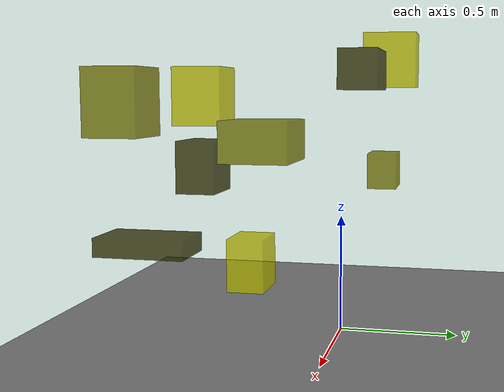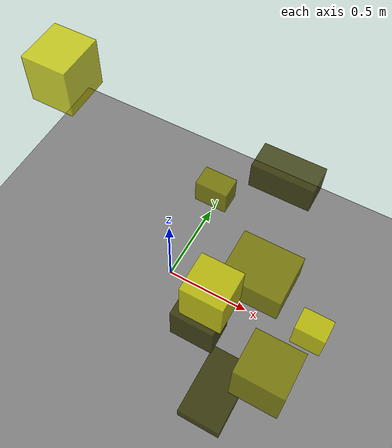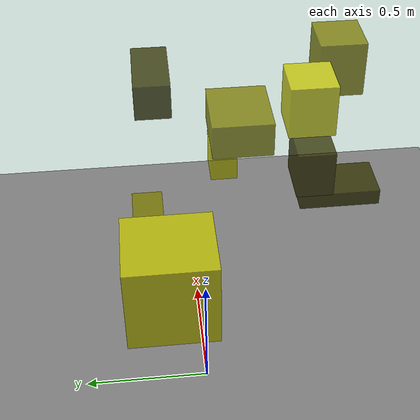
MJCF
<?xml version="1.0"?>
<mujoco model="obstacle_scene">
  <compiler angle="radian" coordinate="local"/>
  <option timestep="0.001" gravity="0 0 -9.81"/>

  <asset>
    <material name="obstacle_mat" rgba="0.8 0.8 0.0 0.8"/>
    <material name="ground_mat" rgba="0.5 0.5 0.5 1"/>
  </asset>

  <worldbody>
    <!-- Ground plane -->
    <geom name="ground" type="plane" size="3 3 0.1" material="ground_mat"/>

    <!-- Obstacles -->
    <body name="obstacle_0" pos="0.434571 -0.475948 0.751606">
      <geom name="obs_0" type="box" size="0.104331 0.075549 0.100565" rgba="0.2 0.2 0.0 0.8"/>
    </body>
    <body name="obstacle_1" pos="0.586143 -0.196702 0.861357">
      <geom name="obs_1" type="box" size="0.145253 0.124906 0.075131" rgba="0.5 0.5 0.0 0.8"/>
    </body>
    <body name="obstacle_2" pos="0.887060 -0.157180 0.481434">
      <geom name="obs_2" type="box" size="0.079122 0.060256 0.085354" rgba="0.8 0.8 0.0 0.8"/>
    </body>
    <body name="obstacle_3" pos="0.512895 0.155558 1.115269">
      <geom name="obs_3" type="box" size="0.144449 0.069307 0.071079" rgba="0.2 0.2 0.0 0.8"/>
    </body>
    <body name="obstacle_4" pos="0.160851 0.198917 0.724528">
      <geom name="obs_4" type="box" size="0.086130 0.056781 0.069770" rgba="0.5 0.5 0.0 0.8"/>
    </body>
    <body name="obstacle_5" pos="-0.647434 0.147387 1.197477">
      <geom name="obs_5" type="box" size="0.116507 0.128418 0.134252" rgba="0.8 0.8 0.0 0.8"/>
    </body>
    <body name="obstacle_6" pos="0.617797 -0.634188 0.468500">
      <geom name="obs_6" type="box" size="0.104673 0.174611 0.035768" rgba="0.2 0.2 0.0 0.8"/>
    </body>
    <body name="obstacle_7" pos="0.808163 -0.640187 1.001482">
      <geom name="obs_7" type="box" size="0.104878 0.097211 0.120029" rgba="0.5 0.5 0.0 0.8"/>
    </body>
    <body name="obstacle_8" pos="0.472536 -0.457756 1.021081">
      <geom name="obs_8" type="box" size="0.096480 0.093033 0.110013" rgba="0.8 0.8 0.0 0.8"/>
    </body>
  </worldbody>
</mujoco>
